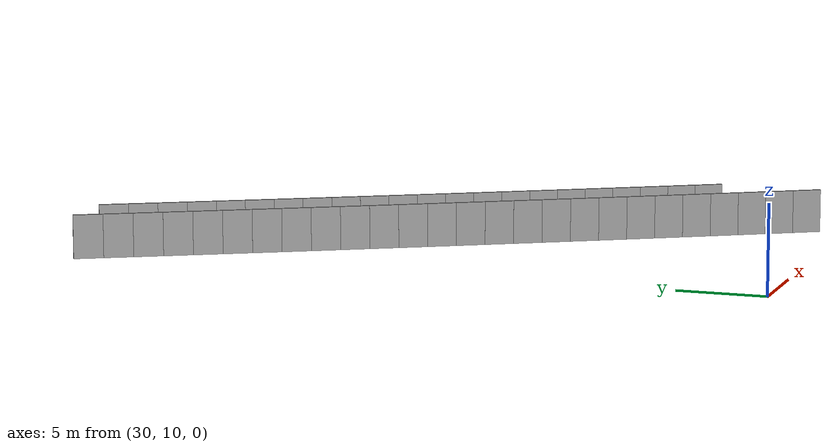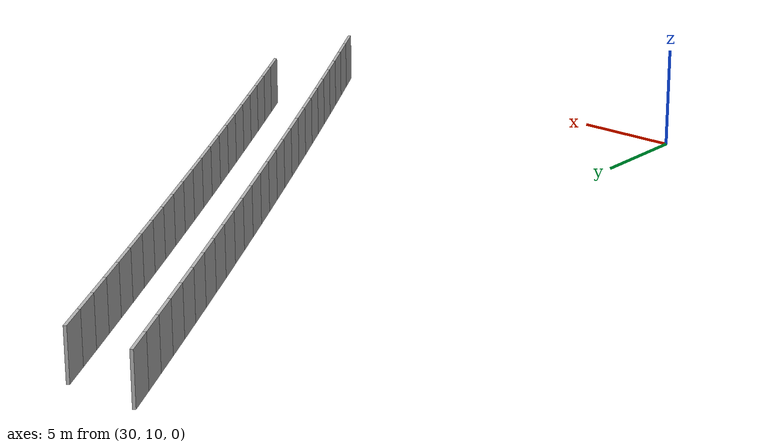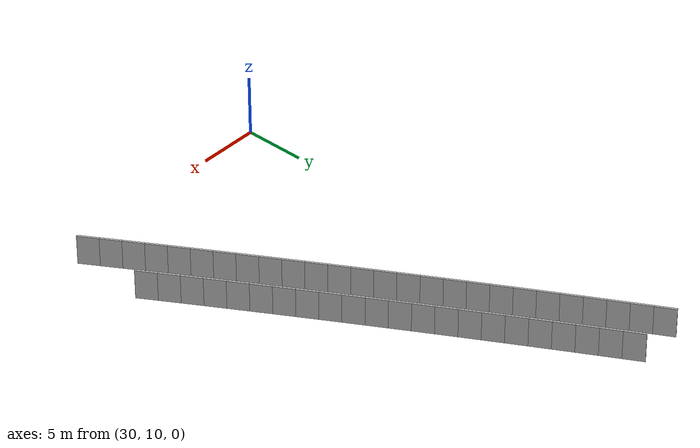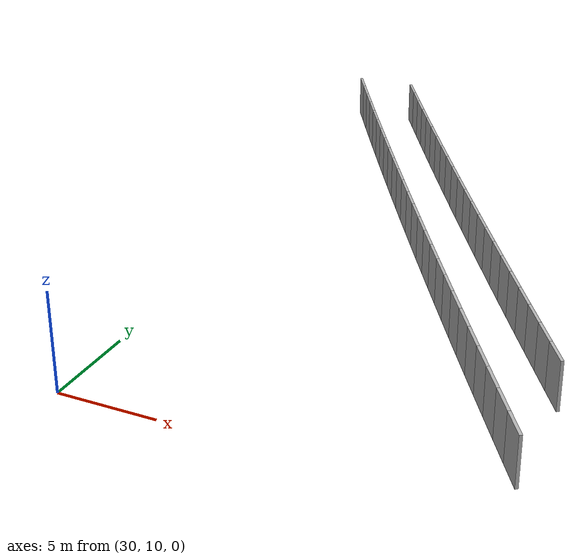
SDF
<?xml version="1.0" ?>
<sdf version="1.6">
  <model name="sps_4726">
    <pose frame="">0 0 0 0 -0 0</pose>
    <static>1</static>
    <self_collide>0</self_collide>
    <allow_auto_disable>0</allow_auto_disable>
    <link name="Wall6464">
      <kinematic>0</kinematic>
      <gravity>1</gravity>
      <self_collide>0</self_collide>
      <collision name="collision">
        <geometry>
          <box>
            <size>1.68592 0.15 2.5</size>
          </box>
        </geometry>
        <pose frame="">0 0 0 0 -0 0</pose>
      </collision>
      <visual name="visual">
        <geometry>
          <box>
            <size>1.68592 0.15 2.5</size>
          </box>
        </geometry>
        <pose frame="">0 0 0 0 -0 0</pose>
        <cast_shadows>1</cast_shadows>
        <transparency>0.0</transparency>
      </visual>
      <pose frame="">28.3476 48.7239 1.25 0 0 -1.05961</pose>
    </link>
    <link name="Wall6465">
      <kinematic>0</kinematic>
      <gravity>1</gravity>
      <self_collide>0</self_collide>
      <collision name="collision">
        <geometry>
          <box>
            <size>1.68624 0.15 2.5</size>
          </box>
        </geometry>
        <pose frame="">0 0 0 0 -0 0</pose>
      </collision>
      <visual name="visual">
        <geometry>
          <box>
            <size>1.68624 0.15 2.5</size>
          </box>
        </geometry>
        <pose frame="">0 0 0 0 -0 0</pose>
        <cast_shadows>1</cast_shadows>
        <transparency>0.0</transparency>
      </visual>
      <pose frame="">29.1732 47.2538 1.25 0 0 -1.0586</pose>
    </link>
    <link name="Wall6466">
      <kinematic>0</kinematic>
      <gravity>1</gravity>
      <self_collide>0</self_collide>
      <collision name="collision">
        <geometry>
          <box>
            <size>1.68623 0.15 2.5</size>
          </box>
        </geometry>
        <pose frame="">0 0 0 0 -0 0</pose>
      </collision>
      <visual name="visual">
        <geometry>
          <box>
            <size>1.68623 0.15 2.5</size>
          </box>
        </geometry>
        <pose frame="">0 0 0 0 -0 0</pose>
        <cast_shadows>1</cast_shadows>
        <transparency>0.0</transparency>
      </visual>
      <pose frame="">30.0009 45.7847 1.25 0 0 -1.05685</pose>
    </link>
    <link name="Wall6467">
      <kinematic>0</kinematic>
      <gravity>1</gravity>
      <self_collide>0</self_collide>
      <collision name="collision">
        <geometry>
          <box>
            <size>1.68605 0.15 2.5</size>
          </box>
        </geometry>
        <pose frame="">0 0 0 0 -0 0</pose>
      </collision>
      <visual name="visual">
        <geometry>
          <box>
            <size>1.68605 0.15 2.5</size>
          </box>
        </geometry>
        <pose frame="">0 0 0 0 -0 0</pose>
        <cast_shadows>1</cast_shadows>
        <transparency>0.0</transparency>
      </visual>
      <pose frame="">30.8311 44.3171 1.25 0 0 -1.05513</pose>
    </link>
    <link name="Wall6468">
      <kinematic>0</kinematic>
      <gravity>1</gravity>
      <self_collide>0</self_collide>
      <collision name="collision">
        <geometry>
          <box>
            <size>1.68625 0.15 2.5</size>
          </box>
        </geometry>
        <pose frame="">0 0 0 0 -0 0</pose>
      </collision>
      <visual name="visual">
        <geometry>
          <box>
            <size>1.68625 0.15 2.5</size>
          </box>
        </geometry>
        <pose frame="">0 0 0 0 -0 0</pose>
        <cast_shadows>1</cast_shadows>
        <transparency>0.0</transparency>
      </visual>
      <pose frame="">31.6638 42.8509 1.25 0 0 -1.05345</pose>
    </link>
    <link name="Wall6469">
      <kinematic>0</kinematic>
      <gravity>1</gravity>
      <self_collide>0</self_collide>
      <collision name="collision">
        <geometry>
          <box>
            <size>1.68614 0.15 2.5</size>
          </box>
        </geometry>
        <pose frame="">0 0 0 0 -0 0</pose>
      </collision>
      <visual name="visual">
        <geometry>
          <box>
            <size>1.68614 0.15 2.5</size>
          </box>
        </geometry>
        <pose frame="">0 0 0 0 -0 0</pose>
        <cast_shadows>1</cast_shadows>
        <transparency>0.0</transparency>
      </visual>
      <pose frame="">32.499 41.3861 1.25 0 0 -1.05174</pose>
    </link>
    <link name="Wall6470">
      <kinematic>0</kinematic>
      <gravity>1</gravity>
      <self_collide>0</self_collide>
      <collision name="collision">
        <geometry>
          <box>
            <size>1.6863 0.15 2.5</size>
          </box>
        </geometry>
        <pose frame="">0 0 0 0 -0 0</pose>
      </collision>
      <visual name="visual">
        <geometry>
          <box>
            <size>1.6863 0.15 2.5</size>
          </box>
        </geometry>
        <pose frame="">0 0 0 0 -0 0</pose>
        <cast_shadows>1</cast_shadows>
        <transparency>0.0</transparency>
      </visual>
      <pose frame="">33.3368 39.9227 1.25 0 0 -1.05004</pose>
    </link>
    <link name="Wall6471">
      <kinematic>0</kinematic>
      <gravity>1</gravity>
      <self_collide>0</self_collide>
      <collision name="collision">
        <geometry>
          <box>
            <size>1.68614 0.15 2.5</size>
          </box>
        </geometry>
        <pose frame="">0 0 0 0 -0 0</pose>
      </collision>
      <visual name="visual">
        <geometry>
          <box>
            <size>1.68614 0.15 2.5</size>
          </box>
        </geometry>
        <pose frame="">0 0 0 0 -0 0</pose>
        <cast_shadows>1</cast_shadows>
        <transparency>0.0</transparency>
      </visual>
      <pose frame="">34.177 38.4607 1.25 0 0 -1.04832</pose>
    </link>
    <link name="Wall6472">
      <kinematic>0</kinematic>
      <gravity>1</gravity>
      <self_collide>0</self_collide>
      <collision name="collision">
        <geometry>
          <box>
            <size>1.68629 0.15 2.5</size>
          </box>
        </geometry>
        <pose frame="">0 0 0 0 -0 0</pose>
      </collision>
      <visual name="visual">
        <geometry>
          <box>
            <size>1.68629 0.15 2.5</size>
          </box>
        </geometry>
        <pose frame="">0 0 0 0 -0 0</pose>
        <cast_shadows>1</cast_shadows>
        <transparency>0.0</transparency>
      </visual>
      <pose frame="">35.0196 37.0001 1.25 0 0 -1.04678</pose>
    </link>
    <link name="Wall6473">
      <kinematic>0</kinematic>
      <gravity>1</gravity>
      <self_collide>0</self_collide>
      <collision name="collision">
        <geometry>
          <box>
            <size>1.68612 0.15 2.5</size>
          </box>
        </geometry>
        <pose frame="">0 0 0 0 -0 0</pose>
      </collision>
      <visual name="visual">
        <geometry>
          <box>
            <size>1.68612 0.15 2.5</size>
          </box>
        </geometry>
        <pose frame="">0 0 0 0 -0 0</pose>
        <cast_shadows>1</cast_shadows>
        <transparency>0.0</transparency>
      </visual>
      <pose frame="">35.8646 35.5409 1.25 0 0 -1.04501</pose>
    </link>
    <link name="Wall6474">
      <kinematic>0</kinematic>
      <gravity>1</gravity>
      <self_collide>0</self_collide>
      <collision name="collision">
        <geometry>
          <box>
            <size>1.68622 0.15 2.5</size>
          </box>
        </geometry>
        <pose frame="">0 0 0 0 -0 0</pose>
      </collision>
      <visual name="visual">
        <geometry>
          <box>
            <size>1.68622 0.15 2.5</size>
          </box>
        </geometry>
        <pose frame="">0 0 0 0 -0 0</pose>
        <cast_shadows>1</cast_shadows>
        <transparency>0.0</transparency>
      </visual>
      <pose frame="">36.7121 34.0832 1.25 0 0 -1.04333</pose>
    </link>
    <link name="Wall6475">
      <kinematic>0</kinematic>
      <gravity>1</gravity>
      <self_collide>0</self_collide>
      <collision name="collision">
        <geometry>
          <box>
            <size>1.68618 0.15 2.5</size>
          </box>
        </geometry>
        <pose frame="">0 0 0 0 -0 0</pose>
      </collision>
      <visual name="visual">
        <geometry>
          <box>
            <size>1.68618 0.15 2.5</size>
          </box>
        </geometry>
        <pose frame="">0 0 0 0 -0 0</pose>
        <cast_shadows>1</cast_shadows>
        <transparency>0.0</transparency>
      </visual>
      <pose frame="">37.562 32.6269 1.25 0 0 -1.04164</pose>
    </link>
    <link name="Wall6476">
      <kinematic>0</kinematic>
      <gravity>1</gravity>
      <self_collide>0</self_collide>
      <collision name="collision">
        <geometry>
          <box>
            <size>1.6861 0.15 2.5</size>
          </box>
        </geometry>
        <pose frame="">0 0 0 0 -0 0</pose>
      </collision>
      <visual name="visual">
        <geometry>
          <box>
            <size>1.6861 0.15 2.5</size>
          </box>
        </geometry>
        <pose frame="">0 0 0 0 -0 0</pose>
        <cast_shadows>1</cast_shadows>
        <transparency>0.0</transparency>
      </visual>
      <pose frame="">38.4145 31.1721 1.25 0 0 -1.03993</pose>
    </link>
    <link name="Wall6477">
      <kinematic>0</kinematic>
      <gravity>1</gravity>
      <self_collide>0</self_collide>
      <collision name="collision">
        <geometry>
          <box>
            <size>1.68635 0.15 2.5</size>
          </box>
        </geometry>
        <pose frame="">0 0 0 0 -0 0</pose>
      </collision>
      <visual name="visual">
        <geometry>
          <box>
            <size>1.68635 0.15 2.5</size>
          </box>
        </geometry>
        <pose frame="">0 0 0 0 -0 0</pose>
        <cast_shadows>1</cast_shadows>
        <transparency>0.0</transparency>
      </visual>
      <pose frame="">39.2694 29.7187 1.25 0 0 -1.03825</pose>
    </link>
    <link name="Wall6478">
      <kinematic>0</kinematic>
      <gravity>1</gravity>
      <self_collide>0</self_collide>
      <collision name="collision">
        <geometry>
          <box>
            <size>1.68614 0.15 2.5</size>
          </box>
        </geometry>
        <pose frame="">0 0 0 0 -0 0</pose>
      </collision>
      <visual name="visual">
        <geometry>
          <box>
            <size>1.68614 0.15 2.5</size>
          </box>
        </geometry>
        <pose frame="">0 0 0 0 -0 0</pose>
        <cast_shadows>1</cast_shadows>
        <transparency>0.0</transparency>
      </visual>
      <pose frame="">40.1268 28.2667 1.25 0 0 -1.03654</pose>
    </link>
    <link name="Wall6479">
      <kinematic>0</kinematic>
      <gravity>1</gravity>
      <self_collide>0</self_collide>
      <collision name="collision">
        <geometry>
          <box>
            <size>1.68618 0.15 2.5</size>
          </box>
        </geometry>
        <pose frame="">0 0 0 0 -0 0</pose>
      </collision>
      <visual name="visual">
        <geometry>
          <box>
            <size>1.68618 0.15 2.5</size>
          </box>
        </geometry>
        <pose frame="">0 0 0 0 -0 0</pose>
        <cast_shadows>1</cast_shadows>
        <transparency>0.0</transparency>
      </visual>
      <pose frame="">40.9866 26.8162 1.25 0 0 -1.03487</pose>
    </link>
    <link name="Wall6480">
      <kinematic>0</kinematic>
      <gravity>1</gravity>
      <self_collide>0</self_collide>
      <collision name="collision">
        <geometry>
          <box>
            <size>1.68624 0.15 2.5</size>
          </box>
        </geometry>
        <pose frame="">0 0 0 0 -0 0</pose>
      </collision>
      <visual name="visual">
        <geometry>
          <box>
            <size>1.68624 0.15 2.5</size>
          </box>
        </geometry>
        <pose frame="">0 0 0 0 -0 0</pose>
        <cast_shadows>1</cast_shadows>
        <transparency>0.0</transparency>
      </visual>
      <pose frame="">41.8488 25.3671 1.25 0 0 -1.03325</pose>
    </link>
    <link name="Wall6481">
      <kinematic>0</kinematic>
      <gravity>1</gravity>
      <self_collide>0</self_collide>
      <collision name="collision">
        <geometry>
          <box>
            <size>1.68635 0.15 2.5</size>
          </box>
        </geometry>
        <pose frame="">0 0 0 0 -0 0</pose>
      </collision>
      <visual name="visual">
        <geometry>
          <box>
            <size>1.68635 0.15 2.5</size>
          </box>
        </geometry>
        <pose frame="">0 0 0 0 -0 0</pose>
        <cast_shadows>1</cast_shadows>
        <transparency>0.0</transparency>
      </visual>
      <pose frame="">42.7135 23.9194 1.25 0 0 -1.03152</pose>
    </link>
    <link name="Wall6482">
      <kinematic>0</kinematic>
      <gravity>1</gravity>
      <self_collide>0</self_collide>
      <collision name="collision">
        <geometry>
          <box>
            <size>1.6861 0.15 2.5</size>
          </box>
        </geometry>
        <pose frame="">0 0 0 0 -0 0</pose>
      </collision>
      <visual name="visual">
        <geometry>
          <box>
            <size>1.6861 0.15 2.5</size>
          </box>
        </geometry>
        <pose frame="">0 0 0 0 -0 0</pose>
        <cast_shadows>1</cast_shadows>
        <transparency>0.0</transparency>
      </visual>
      <pose frame="">43.5806 22.4732 1.25 0 0 -1.02987</pose>
    </link>
    <link name="Wall6483">
      <kinematic>0</kinematic>
      <gravity>1</gravity>
      <self_collide>0</self_collide>
      <collision name="collision">
        <geometry>
          <box>
            <size>1.68627 0.15 2.5</size>
          </box>
        </geometry>
        <pose frame="">0 0 0 0 -0 0</pose>
      </collision>
      <visual name="visual">
        <geometry>
          <box>
            <size>1.68627 0.15 2.5</size>
          </box>
        </geometry>
        <pose frame="">0 0 0 0 -0 0</pose>
        <cast_shadows>1</cast_shadows>
        <transparency>0.0</transparency>
      </visual>
      <pose frame="">44.4501 21.0285 1.25 0 0 -1.02815</pose>
    </link>
    <link name="Wall6484">
      <kinematic>0</kinematic>
      <gravity>1</gravity>
      <self_collide>0</self_collide>
      <collision name="collision">
        <geometry>
          <box>
            <size>1.68609 0.15 2.5</size>
          </box>
        </geometry>
        <pose frame="">0 0 0 0 -0 0</pose>
      </collision>
      <visual name="visual">
        <geometry>
          <box>
            <size>1.68609 0.15 2.5</size>
          </box>
        </geometry>
        <pose frame="">0 0 0 0 -0 0</pose>
        <cast_shadows>1</cast_shadows>
        <transparency>0.0</transparency>
      </visual>
      <pose frame="">45.322 19.5853 1.25 0 0 -1.02644</pose>
    </link>
    <link name="Wall6485">
      <kinematic>0</kinematic>
      <gravity>1</gravity>
      <self_collide>0</self_collide>
      <collision name="collision">
        <geometry>
          <box>
            <size>1.68615 0.15 2.5</size>
          </box>
        </geometry>
        <pose frame="">0 0 0 0 -0 0</pose>
      </collision>
      <visual name="visual">
        <geometry>
          <box>
            <size>1.68615 0.15 2.5</size>
          </box>
        </geometry>
        <pose frame="">0 0 0 0 -0 0</pose>
        <cast_shadows>1</cast_shadows>
        <transparency>0.0</transparency>
      </visual>
      <pose frame="">46.1964 18.1436 1.25 0 0 -1.02477</pose>
    </link>
    <link name="Wall6486">
      <kinematic>0</kinematic>
      <gravity>1</gravity>
      <self_collide>0</self_collide>
      <collision name="collision">
        <geometry>
          <box>
            <size>1.68624 0.15 2.5</size>
          </box>
        </geometry>
        <pose frame="">0 0 0 0 -0 0</pose>
      </collision>
      <visual name="visual">
        <geometry>
          <box>
            <size>1.68624 0.15 2.5</size>
          </box>
        </geometry>
        <pose frame="">0 0 0 0 -0 0</pose>
        <cast_shadows>1</cast_shadows>
        <transparency>0.0</transparency>
      </visual>
      <pose frame="">47.0732 16.7033 1.25 0 0 -1.02315</pose>
    </link>
    <link name="Wall6487">
      <kinematic>0</kinematic>
      <gravity>1</gravity>
      <self_collide>0</self_collide>
      <collision name="collision">
        <geometry>
          <box>
            <size>1.68601 0.15 2.5</size>
          </box>
        </geometry>
        <pose frame="">0 0 0 0 -0 0</pose>
      </collision>
      <visual name="visual">
        <geometry>
          <box>
            <size>1.68601 0.15 2.5</size>
          </box>
        </geometry>
        <pose frame="">0 0 0 0 -0 0</pose>
        <cast_shadows>1</cast_shadows>
        <transparency>0.0</transparency>
      </visual>
      <pose frame="">47.9528 15.2648 1.25 0 0 -1.02082</pose>
    </link>
    <link name="Wall6488">
      <kinematic>0</kinematic>
      <gravity>1</gravity>
      <self_collide>0</self_collide>
      <collision name="collision">
        <geometry>
          <box>
            <size>1.68616 0.15 2.5</size>
          </box>
        </geometry>
        <pose frame="">0 0 0 0 -0 0</pose>
      </collision>
      <visual name="visual">
        <geometry>
          <box>
            <size>1.68616 0.15 2.5</size>
          </box>
        </geometry>
        <pose frame="">0 0 0 0 -0 0</pose>
        <cast_shadows>1</cast_shadows>
        <transparency>0.0</transparency>
      </visual>
      <pose frame="">48.8349 13.8278 1.25 0 0 -1.01977</pose>
    </link>
    <link name="Wall6489">
      <kinematic>0</kinematic>
      <gravity>1</gravity>
      <self_collide>0</self_collide>
      <collision name="collision">
        <geometry>
          <box>
            <size>1.68615 0.15 2.5</size>
          </box>
        </geometry>
        <pose frame="">0 0 0 0 -0 0</pose>
      </collision>
      <visual name="visual">
        <geometry>
          <box>
            <size>1.68615 0.15 2.5</size>
          </box>
        </geometry>
        <pose frame="">0 0 0 0 -0 0</pose>
        <cast_shadows>1</cast_shadows>
        <transparency>0.0</transparency>
      </visual>
      <pose frame="">49.719 12.392 1.25 0 0 -1.01798</pose>
    </link>
    <link name="Wall9255">
      <kinematic>0</kinematic>
      <gravity>1</gravity>
      <self_collide>0</self_collide>
      <collision name="collision">
        <geometry>
          <box>
            <size>1.68079 0.15 2.5</size>
          </box>
        </geometry>
        <pose frame="">0 0 0 0 -0 0</pose>
      </collision>
      <visual name="visual">
        <geometry>
          <box>
            <size>1.68079 0.15 2.5</size>
          </box>
        </geometry>
        <pose frame="">0 0 0 0 -0 0</pose>
        <cast_shadows>1</cast_shadows>
        <transparency>0.0</transparency>
      </visual>
      <pose frame="">49.8054 18.3697 1.25 0 -0 2.11863</pose>
    </link>
    <link name="Wall9256">
      <kinematic>0</kinematic>
      <gravity>1</gravity>
      <self_collide>0</self_collide>
      <collision name="collision">
        <geometry>
          <box>
            <size>1.68078 0.15 2.5</size>
          </box>
        </geometry>
        <pose frame="">0 0 0 0 -0 0</pose>
      </collision>
      <visual name="visual">
        <geometry>
          <box>
            <size>1.68078 0.15 2.5</size>
          </box>
        </geometry>
        <pose frame="">0 0 0 0 -0 0</pose>
        <cast_shadows>1</cast_shadows>
        <transparency>0.0</transparency>
      </visual>
      <pose frame="">48.9312 19.8053 1.25 0 -0 2.11681</pose>
    </link>
    <link name="Wall9257">
      <kinematic>0</kinematic>
      <gravity>1</gravity>
      <self_collide>0</self_collide>
      <collision name="collision">
        <geometry>
          <box>
            <size>1.68087 0.15 2.5</size>
          </box>
        </geometry>
        <pose frame="">0 0 0 0 -0 0</pose>
      </collision>
      <visual name="visual">
        <geometry>
          <box>
            <size>1.68087 0.15 2.5</size>
          </box>
        </geometry>
        <pose frame="">0 0 0 0 -0 0</pose>
        <cast_shadows>1</cast_shadows>
        <transparency>0.0</transparency>
      </visual>
      <pose frame="">48.0597 21.2425 1.25 0 -0 2.11508</pose>
    </link>
    <link name="Wall9258">
      <kinematic>0</kinematic>
      <gravity>1</gravity>
      <self_collide>0</self_collide>
      <collision name="collision">
        <geometry>
          <box>
            <size>1.68088 0.15 2.5</size>
          </box>
        </geometry>
        <pose frame="">0 0 0 0 -0 0</pose>
      </collision>
      <visual name="visual">
        <geometry>
          <box>
            <size>1.68088 0.15 2.5</size>
          </box>
        </geometry>
        <pose frame="">0 0 0 0 -0 0</pose>
        <cast_shadows>1</cast_shadows>
        <transparency>0.0</transparency>
      </visual>
      <pose frame="">47.1905 22.6812 1.25 0 -0 2.11346</pose>
    </link>
    <link name="Wall9259">
      <kinematic>0</kinematic>
      <gravity>1</gravity>
      <self_collide>0</self_collide>
      <collision name="collision">
        <geometry>
          <box>
            <size>1.68082 0.15 2.5</size>
          </box>
        </geometry>
        <pose frame="">0 0 0 0 -0 0</pose>
      </collision>
      <visual name="visual">
        <geometry>
          <box>
            <size>1.68082 0.15 2.5</size>
          </box>
        </geometry>
        <pose frame="">0 0 0 0 -0 0</pose>
        <cast_shadows>1</cast_shadows>
        <transparency>0.0</transparency>
      </visual>
      <pose frame="">46.3236 24.1213 1.25 0 -0 2.11179</pose>
    </link>
    <link name="Wall9260">
      <kinematic>0</kinematic>
      <gravity>1</gravity>
      <self_collide>0</self_collide>
      <collision name="collision">
        <geometry>
          <box>
            <size>1.68067 0.15 2.5</size>
          </box>
        </geometry>
        <pose frame="">0 0 0 0 -0 0</pose>
      </collision>
      <visual name="visual">
        <geometry>
          <box>
            <size>1.68067 0.15 2.5</size>
          </box>
        </geometry>
        <pose frame="">0 0 0 0 -0 0</pose>
        <cast_shadows>1</cast_shadows>
        <transparency>0.0</transparency>
      </visual>
      <pose frame="">45.4593 25.5628 1.25 0 -0 2.11002</pose>
    </link>
    <link name="Wall9261">
      <kinematic>0</kinematic>
      <gravity>1</gravity>
      <self_collide>0</self_collide>
      <collision name="collision">
        <geometry>
          <box>
            <size>1.68075 0.15 2.5</size>
          </box>
        </geometry>
        <pose frame="">0 0 0 0 -0 0</pose>
      </collision>
      <visual name="visual">
        <geometry>
          <box>
            <size>1.68075 0.15 2.5</size>
          </box>
        </geometry>
        <pose frame="">0 0 0 0 -0 0</pose>
        <cast_shadows>1</cast_shadows>
        <transparency>0.0</transparency>
      </visual>
      <pose frame="">44.5975 27.0057 1.25 0 -0 2.10847</pose>
    </link>
    <link name="Wall9262">
      <kinematic>0</kinematic>
      <gravity>1</gravity>
      <self_collide>0</self_collide>
      <collision name="collision">
        <geometry>
          <box>
            <size>1.68081 0.15 2.5</size>
          </box>
        </geometry>
        <pose frame="">0 0 0 0 -0 0</pose>
      </collision>
      <visual name="visual">
        <geometry>
          <box>
            <size>1.68081 0.15 2.5</size>
          </box>
        </geometry>
        <pose frame="">0 0 0 0 -0 0</pose>
        <cast_shadows>1</cast_shadows>
        <transparency>0.0</transparency>
      </visual>
      <pose frame="">43.738 28.4501 1.25 0 -0 2.10668</pose>
    </link>
    <link name="Wall9263">
      <kinematic>0</kinematic>
      <gravity>1</gravity>
      <self_collide>0</self_collide>
      <collision name="collision">
        <geometry>
          <box>
            <size>1.68077 0.15 2.5</size>
          </box>
        </geometry>
        <pose frame="">0 0 0 0 -0 0</pose>
      </collision>
      <visual name="visual">
        <geometry>
          <box>
            <size>1.68077 0.15 2.5</size>
          </box>
        </geometry>
        <pose frame="">0 0 0 0 -0 0</pose>
        <cast_shadows>1</cast_shadows>
        <transparency>0.0</transparency>
      </visual>
      <pose frame="">42.881 29.896 1.25 0 -0 2.105</pose>
    </link>
    <link name="Wall9264">
      <kinematic>0</kinematic>
      <gravity>1</gravity>
      <self_collide>0</self_collide>
      <collision name="collision">
        <geometry>
          <box>
            <size>1.6808 0.15 2.5</size>
          </box>
        </geometry>
        <pose frame="">0 0 0 0 -0 0</pose>
      </collision>
      <visual name="visual">
        <geometry>
          <box>
            <size>1.6808 0.15 2.5</size>
          </box>
        </geometry>
        <pose frame="">0 0 0 0 -0 0</pose>
        <cast_shadows>1</cast_shadows>
        <transparency>0.0</transparency>
      </visual>
      <pose frame="">42.0264 31.3433 1.25 0 -0 2.10339</pose>
    </link>
    <link name="Wall9265">
      <kinematic>0</kinematic>
      <gravity>1</gravity>
      <self_collide>0</self_collide>
      <collision name="collision">
        <geometry>
          <box>
            <size>1.68095 0.15 2.5</size>
          </box>
        </geometry>
        <pose frame="">0 0 0 0 -0 0</pose>
      </collision>
      <visual name="visual">
        <geometry>
          <box>
            <size>1.68095 0.15 2.5</size>
          </box>
        </geometry>
        <pose frame="">0 0 0 0 -0 0</pose>
        <cast_shadows>1</cast_shadows>
        <transparency>0.0</transparency>
      </visual>
      <pose frame="">41.1742 32.7921 1.25 0 -0 2.10161</pose>
    </link>
    <link name="Wall9266">
      <kinematic>0</kinematic>
      <gravity>1</gravity>
      <self_collide>0</self_collide>
      <collision name="collision">
        <geometry>
          <box>
            <size>1.68084 0.15 2.5</size>
          </box>
        </geometry>
        <pose frame="">0 0 0 0 -0 0</pose>
      </collision>
      <visual name="visual">
        <geometry>
          <box>
            <size>1.68084 0.15 2.5</size>
          </box>
        </geometry>
        <pose frame="">0 0 0 0 -0 0</pose>
        <cast_shadows>1</cast_shadows>
        <transparency>0.0</transparency>
      </visual>
      <pose frame="">40.3245 34.2424 1.25 0 -0 2.09992</pose>
    </link>
    <link name="Wall9267">
      <kinematic>0</kinematic>
      <gravity>1</gravity>
      <self_collide>0</self_collide>
      <collision name="collision">
        <geometry>
          <box>
            <size>1.68092 0.15 2.5</size>
          </box>
        </geometry>
        <pose frame="">0 0 0 0 -0 0</pose>
      </collision>
      <visual name="visual">
        <geometry>
          <box>
            <size>1.68092 0.15 2.5</size>
          </box>
        </geometry>
        <pose frame="">0 0 0 0 -0 0</pose>
        <cast_shadows>1</cast_shadows>
        <transparency>0.0</transparency>
      </visual>
      <pose frame="">39.4771 35.6941 1.25 0 -0 2.09834</pose>
    </link>
    <link name="Wall9268">
      <kinematic>0</kinematic>
      <gravity>1</gravity>
      <self_collide>0</self_collide>
      <collision name="collision">
        <geometry>
          <box>
            <size>1.68072 0.15 2.5</size>
          </box>
        </geometry>
        <pose frame="">0 0 0 0 -0 0</pose>
      </collision>
      <visual name="visual">
        <geometry>
          <box>
            <size>1.68072 0.15 2.5</size>
          </box>
        </geometry>
        <pose frame="">0 0 0 0 -0 0</pose>
        <cast_shadows>1</cast_shadows>
        <transparency>0.0</transparency>
      </visual>
      <pose frame="">38.6323 37.1472 1.25 0 -0 2.09647</pose>
    </link>
    <link name="Wall9269">
      <kinematic>0</kinematic>
      <gravity>1</gravity>
      <self_collide>0</self_collide>
      <collision name="collision">
        <geometry>
          <box>
            <size>1.68083 0.15 2.5</size>
          </box>
        </geometry>
        <pose frame="">0 0 0 0 -0 0</pose>
      </collision>
      <visual name="visual">
        <geometry>
          <box>
            <size>1.68083 0.15 2.5</size>
          </box>
        </geometry>
        <pose frame="">0 0 0 0 -0 0</pose>
        <cast_shadows>1</cast_shadows>
        <transparency>0.0</transparency>
      </visual>
      <pose frame="">37.7901 38.6017 1.25 0 -0 2.09492</pose>
    </link>
    <link name="Wall9270">
      <kinematic>0</kinematic>
      <gravity>1</gravity>
      <self_collide>0</self_collide>
      <collision name="collision">
        <geometry>
          <box>
            <size>1.68077 0.15 2.5</size>
          </box>
        </geometry>
        <pose frame="">0 0 0 0 -0 0</pose>
      </collision>
      <visual name="visual">
        <geometry>
          <box>
            <size>1.68077 0.15 2.5</size>
          </box>
        </geometry>
        <pose frame="">0 0 0 0 -0 0</pose>
        <cast_shadows>1</cast_shadows>
        <transparency>0.0</transparency>
      </visual>
      <pose frame="">36.9502 40.0576 1.25 0 -0 2.09319</pose>
    </link>
    <link name="Wall9271">
      <kinematic>0</kinematic>
      <gravity>1</gravity>
      <self_collide>0</self_collide>
      <collision name="collision">
        <geometry>
          <box>
            <size>1.68077 0.15 2.5</size>
          </box>
        </geometry>
        <pose frame="">0 0 0 0 -0 0</pose>
      </collision>
      <visual name="visual">
        <geometry>
          <box>
            <size>1.68077 0.15 2.5</size>
          </box>
        </geometry>
        <pose frame="">0 0 0 0 -0 0</pose>
        <cast_shadows>1</cast_shadows>
        <transparency>0.0</transparency>
      </visual>
      <pose frame="">36.1128 41.5149 1.25 0 -0 2.09151</pose>
    </link>
    <link name="Wall9272">
      <kinematic>0</kinematic>
      <gravity>1</gravity>
      <self_collide>0</self_collide>
      <collision name="collision">
        <geometry>
          <box>
            <size>1.68081 0.15 2.5</size>
          </box>
        </geometry>
        <pose frame="">0 0 0 0 -0 0</pose>
      </collision>
      <visual name="visual">
        <geometry>
          <box>
            <size>1.68081 0.15 2.5</size>
          </box>
        </geometry>
        <pose frame="">0 0 0 0 -0 0</pose>
        <cast_shadows>1</cast_shadows>
        <transparency>0.0</transparency>
      </visual>
      <pose frame="">35.2778 42.9736 1.25 0 -0 2.08987</pose>
    </link>
    <link name="Wall9273">
      <kinematic>0</kinematic>
      <gravity>1</gravity>
      <self_collide>0</self_collide>
      <collision name="collision">
        <geometry>
          <box>
            <size>1.68079 0.15 2.5</size>
          </box>
        </geometry>
        <pose frame="">0 0 0 0 -0 0</pose>
      </collision>
      <visual name="visual">
        <geometry>
          <box>
            <size>1.68079 0.15 2.5</size>
          </box>
        </geometry>
        <pose frame="">0 0 0 0 -0 0</pose>
        <cast_shadows>1</cast_shadows>
        <transparency>0.0</transparency>
      </visual>
      <pose frame="">34.4452 44.4337 1.25 0 -0 2.08824</pose>
    </link>
    <link name="Wall9274">
      <kinematic>0</kinematic>
      <gravity>1</gravity>
      <self_collide>0</self_collide>
      <collision name="collision">
        <geometry>
          <box>
            <size>1.68093 0.15 2.5</size>
          </box>
        </geometry>
        <pose frame="">0 0 0 0 -0 0</pose>
      </collision>
      <visual name="visual">
        <geometry>
          <box>
            <size>1.68093 0.15 2.5</size>
          </box>
        </geometry>
        <pose frame="">0 0 0 0 -0 0</pose>
        <cast_shadows>1</cast_shadows>
        <transparency>0.0</transparency>
      </visual>
      <pose frame="">33.615 45.8953 1.25 0 -0 2.0864</pose>
    </link>
    <link name="Wall9275">
      <kinematic>0</kinematic>
      <gravity>1</gravity>
      <self_collide>0</self_collide>
      <collision name="collision">
        <geometry>
          <box>
            <size>1.68082 0.15 2.5</size>
          </box>
        </geometry>
        <pose frame="">0 0 0 0 -0 0</pose>
      </collision>
      <visual name="visual">
        <geometry>
          <box>
            <size>1.68082 0.15 2.5</size>
          </box>
        </geometry>
        <pose frame="">0 0 0 0 -0 0</pose>
        <cast_shadows>1</cast_shadows>
        <transparency>0.0</transparency>
      </visual>
      <pose frame="">32.7874 47.3583 1.25 0 -0 2.08481</pose>
    </link>
    <link name="Wall9276">
      <kinematic>0</kinematic>
      <gravity>1</gravity>
      <self_collide>0</self_collide>
      <collision name="collision">
        <geometry>
          <box>
            <size>1.6804 0.15 2.5</size>
          </box>
        </geometry>
        <pose frame="">0 0 0 0 -0 0</pose>
      </collision>
      <visual name="visual">
        <geometry>
          <box>
            <size>1.6804 0.15 2.5</size>
          </box>
        </geometry>
        <pose frame="">0 0 0 0 -0 0</pose>
        <cast_shadows>1</cast_shadows>
        <transparency>0.0</transparency>
      </visual>
      <pose frame="">31.9619 48.8222 1.25 0 -0 2.0837</pose>
    </link>
  </model>
</sdf>
